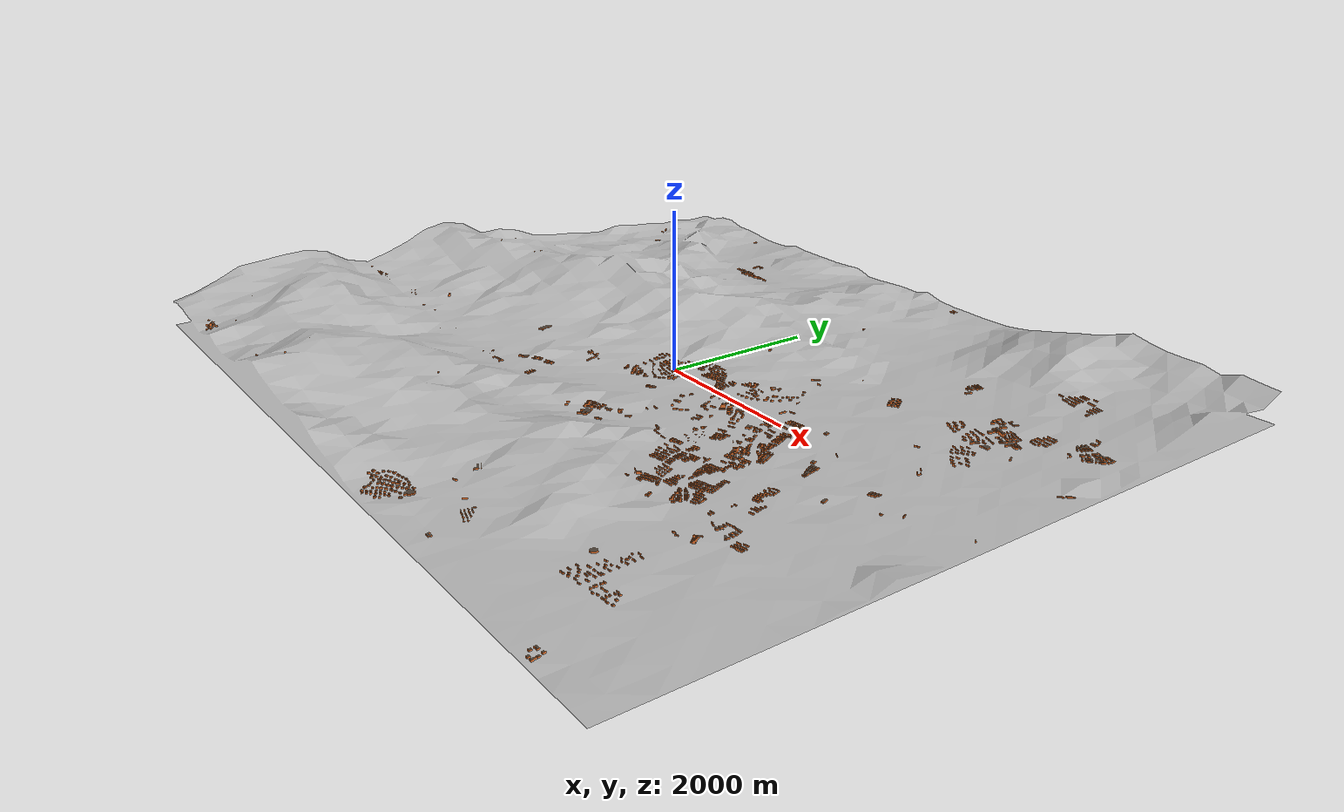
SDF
<sdf version='1.7'>
  <world name='default'>
    <light name='sun' type='directional'>
      <cast_shadows>1</cast_shadows>
      <pose>0 0 10 0 -0 0</pose>
      <diffuse>0.8 0.8 0.8 1</diffuse>
      <specular>0.2 0.2 0.2 1</specular>
      <attenuation>
        <range>50000</range>
        <constant>0.9</constant>
        <linear>0.01</linear>
        <quadratic>0.001</quadratic>
      </attenuation>
      <direction>-0.5 0.1 -0.9</direction>
      <spot>
        <inner_angle>0</inner_angle>
        <outer_angle>0</outer_angle>
        <falloff>0</falloff>
      </spot>
    </light>
    <gravity>0 0 -9.8</gravity>
    <magnetic_field>6e-06 2.3e-05 -4.2e-05</magnetic_field>
    <atmosphere type='adiabatic'/>
    <physics type='ode'>
      <max_step_size>0.001</max_step_size>
      <real_time_factor>1</real_time_factor>
      <real_time_update_rate>1000</real_time_update_rate>
    </physics>
    <scene>
      <ambient>0.4 0.4 0.4 1</ambient>
      <background>0.7 0.7 0.7 1</background>
      <shadows>0</shadows>
    </scene>
    <wind/>
    <spherical_coordinates>
      <surface_model>EARTH_WGS84</surface_model>
      <latitude_deg>0</latitude_deg>
      <longitude_deg>0</longitude_deg>
      <elevation>0</elevation>
      <heading_deg>0</heading_deg>
    </spherical_coordinates>
    <gui fullscreen='0'>
      <camera name='user_camera'>
        <pose>47.4585 -34.7174 15.2593 0 0.079643 2.28019</pose>
        <view_controller>orbit</view_controller>
        <projection_type>perspective</projection_type>
      </camera>
    </gui>

  <model name="Terrain Test">
    <static>true</static>
    <link name="link">
      <pose>0 0 0 0 0 0</pose>
      <collision name="collision">
        <geometry>
          <mesh>
            <uri>model://terrain_test/meshes/test1.dae</uri>
          </mesh>
        </geometry>
      </collision>
      <visual name="visual">
        <geometry>
          <mesh>
            <uri>model://terrain_test/meshes/test1.dae</uri>
          </mesh>
        </geometry>
        <material>
          <script>
            <uri>model://terrain_test/materials/scripts</uri>
            <uri>model://terrain_test/materials/textures</uri>
            <name>TerrainTest/Test</name>
          </script>
        </material>
      </visual>
        <self_collide>0</self_collide>
        <enable_wind>0</enable_wind>
        <kinematic>0</kinematic>
    </link>
      <pose>0 0 0 0 -0 0</pose>
  </model>
  </world>
</sdf>
